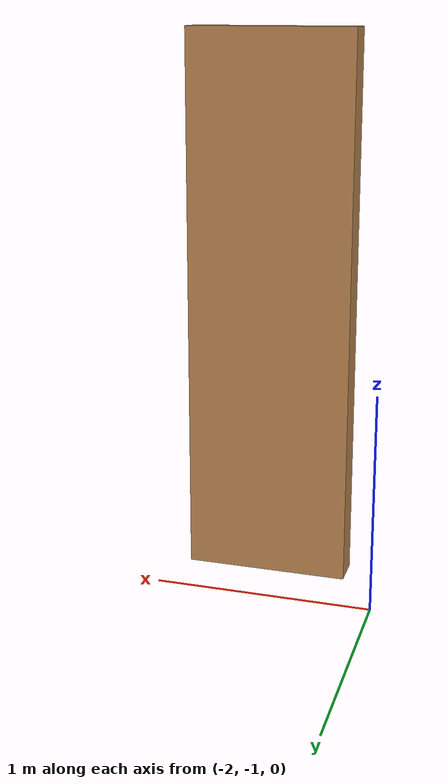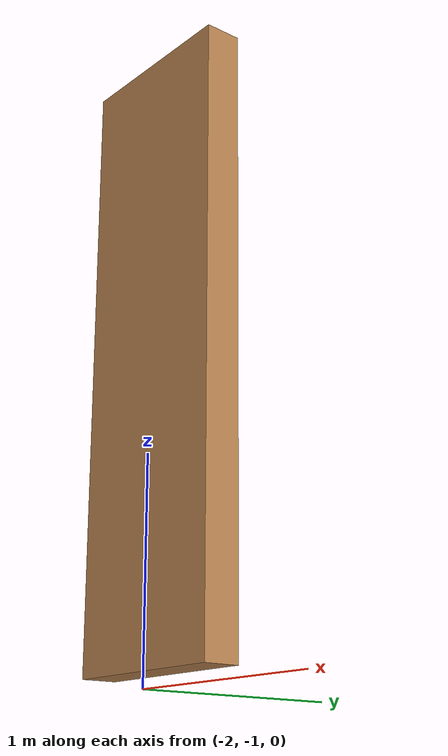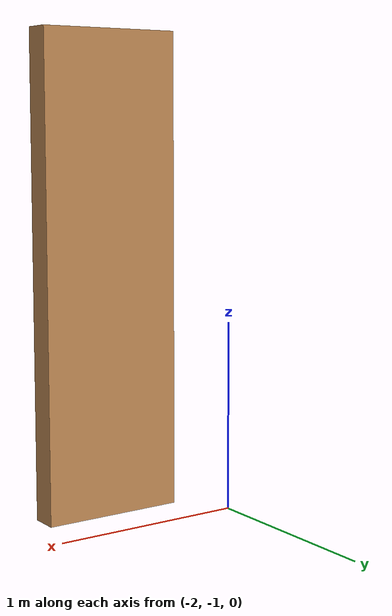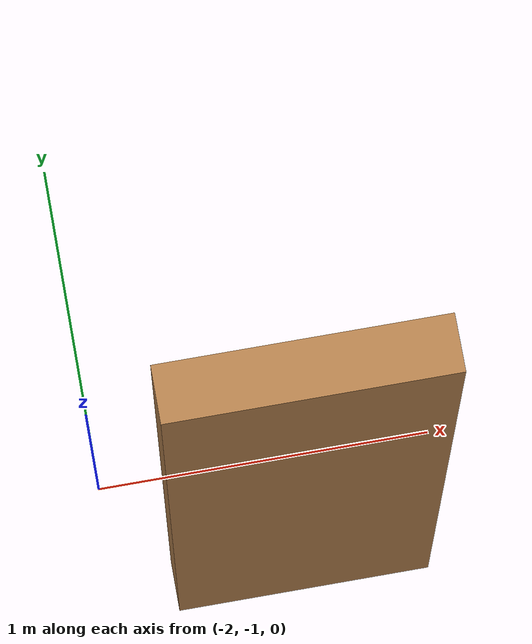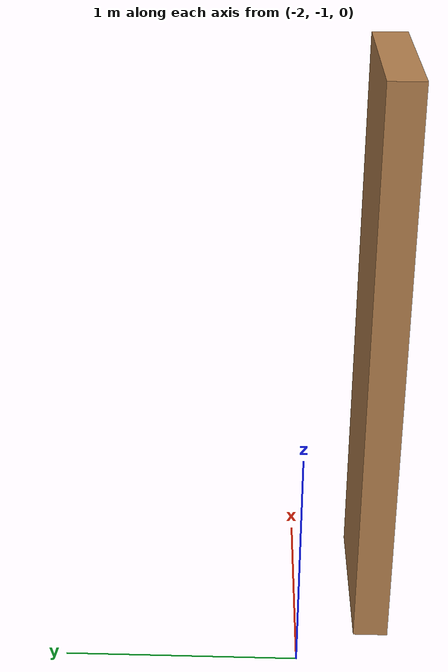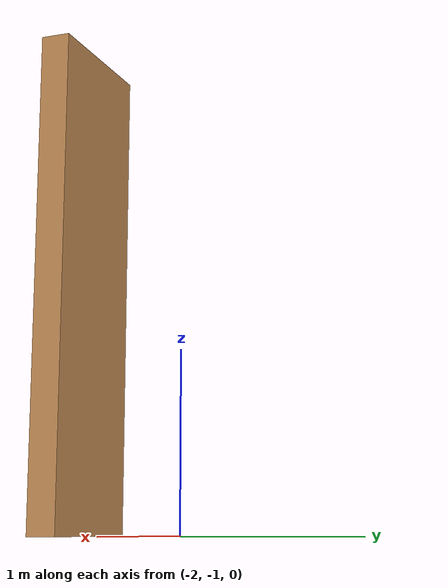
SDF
<?xml version='1.0'?>
<sdf version='1.7'>
  <model name='Untitled'>
    <pose>-0.9125 -0.7025 0 0 -0 0</pose>
    <link name='Wall_6'>
      <collision name='Wall_6_Collision'>
        <geometry>
          <box>
            <size>0.75 0.15 2.5</size>
          </box>
        </geometry>
        <pose>0 0 1.25 0 -0 0</pose>
      </collision>
      <visual name='Wall_6_Visual'>
        <pose>0 0 1.25 0 -0 0</pose>
        <geometry>
          <box>
            <size>0.75 0.15 2.5</size>
          </box>
        </geometry>
        <material>
          <script>
            <uri>file://media/materials/scripts/gazebo.material</uri>
            <name>Gazebo/Wood</name>
          </script>
          <ambient>1 1 1 1</ambient>
        </material>
        <meta>
          <layer>0</layer>
        </meta>
      </visual>
      <pose>-0.5375 -0.6275 0 0 -0 0</pose>
    </link>
    <static>1</static>
  </model>
</sdf>
